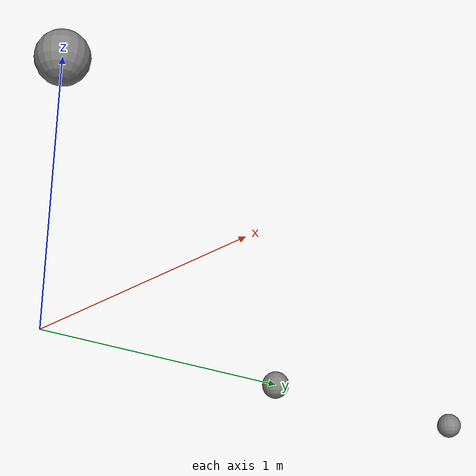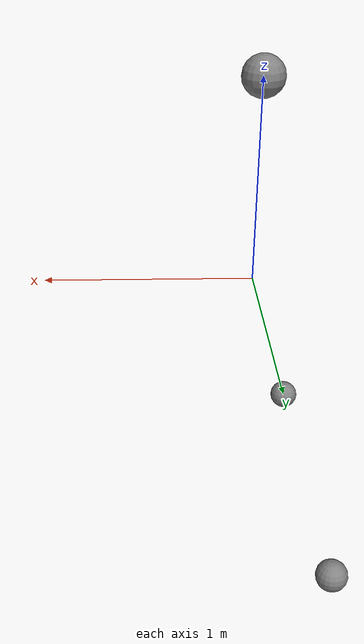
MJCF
<mujoco>
  <option timestep="0.001" gravity="0 0 0"/>
  <worldbody>
    <body name="free" pos="0 0 1">
      <freejoint/>
      <geom type="sphere" size="0.1" mass="1"/>
    </body>
    <body name="p0" pos="0 1 0">
      <joint name="x0" type="slide" axis="1 0 0"/>
      <geom type="sphere" size="0.05" mass="1"/>
    </body>
    <body name="p1" pos="0 2 0">
      <joint name="x1" type="slide" axis="1 0 0"/>
      <geom type="sphere" size="0.05" mass="1"/>
    </body>
  </worldbody>
  <actuator>
    <motor joint="x1"/>
  </actuator>
</mujoco>
